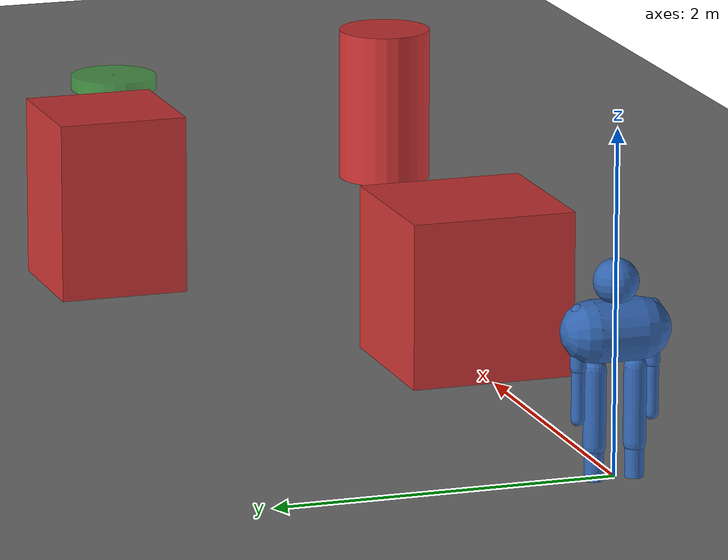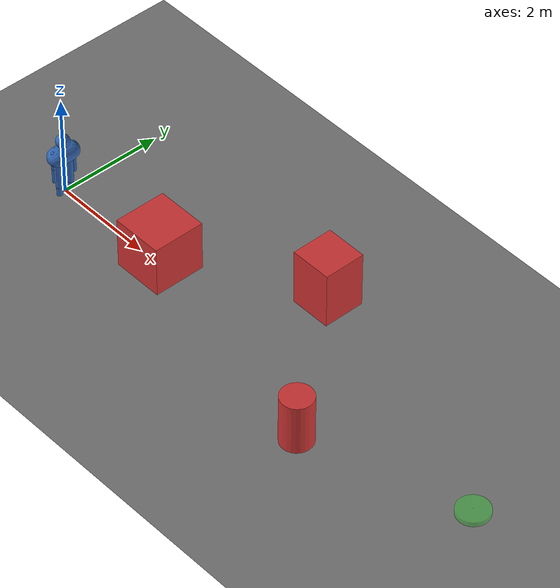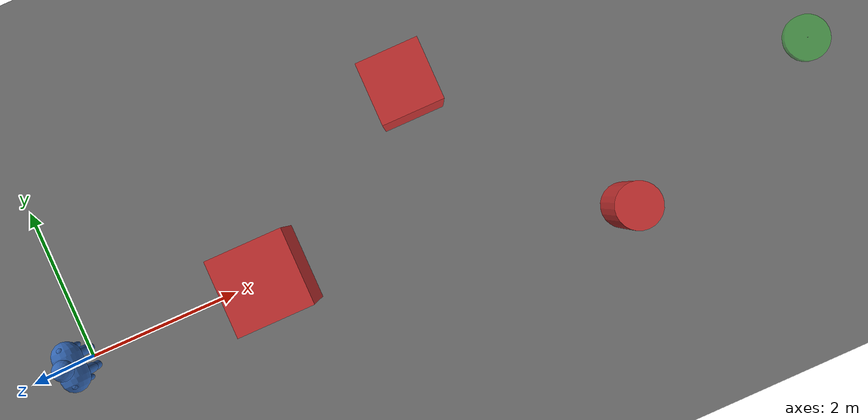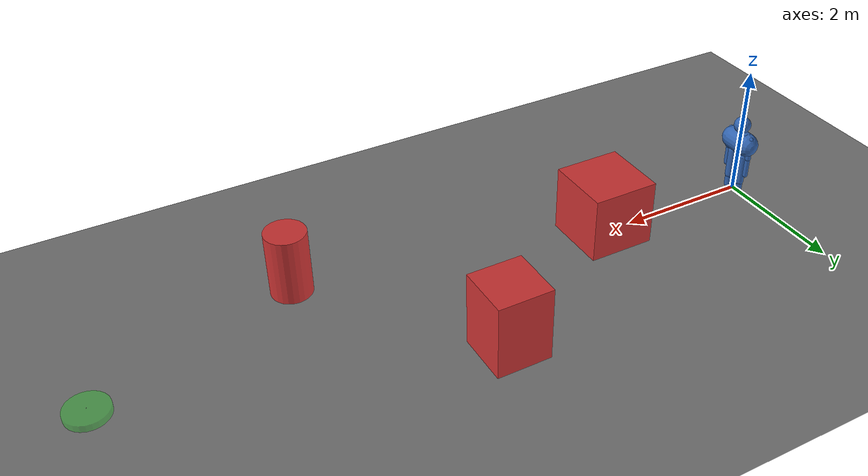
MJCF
<mujoco model="x2_obstacle_navigation">
  <compiler angle="radian" meshdir="." autolimits="true"/>

  <option timestep="0.001" gravity="0 0 -9.81" integrator="implicitfast">
    <flag/>
  </option>

  <default>
    <joint armature="0.01" damping="0.1"/>
    <geom condim="4" friction="1.0 0.005 0.0001"/>
    <motor ctrllimited="true"/>
  </default>

  <asset>
    <texture name="grid" type="2d" builtin="checker" rgb1="0.4 0.4 0.4" rgb2="0.5 0.5 0.5" width="512" height="512"/>
    <material name="grid_mat" texture="grid" texrepeat="10 10" reflectance="0.1"/>
    <material name="obstacle_mat" rgba="0.8 0.2 0.2 1"/>
    <material name="goal_mat" rgba="0.2 0.8 0.2 0.5"/>
    <material name="robot_mat" rgba="0.2 0.4 0.7 1"/>
  </asset>

  <worldbody>
    <!-- Ground -->
    <geom name="ground" type="plane" size="20 20 0.1" material="grid_mat"/>
    <light name="top_light" pos="0 0 10" dir="0 0 -1" diffuse="0.8 0.8 0.8"/>
    <light name="side_light" pos="5 5 5" dir="-1 -1 -1" diffuse="0.4 0.4 0.4"/>

    <!-- AGIBot X2 Robot (humanoid body) -->
    <body name="torso" pos="0 0 0.85">
      <inertial mass="45.0" pos="0 0 0" diaginertia="1.5 1.5 1.5"/>
      <geom name="torso_geom" type="capsule" size="0.18" fromto="0 -0.14 0 0 0.14 0" material="robot_mat"/>

      <!-- Head -->
      <body name="head" pos="0 0 0.28">
        <inertial mass="3.0" pos="0 0 0" diaginertia="0.15 0.15 0.15"/>
        <geom name="head_geom" type="sphere" size="0.13" material="robot_mat"/>
      </body>

      <!-- Left Arm -->
      <body name="left_upper_arm" pos="0 0.22 0.12">
        <inertial mass="2.5" pos="0 0 -0.15" diaginertia="0.06 0.06 0.06"/>
        <joint name="left_shoulder_pitch" type="hinge" axis="1 0 0" range="-3.14 3.14"/>
        <geom name="left_upper_arm_geom" type="capsule" size="0.045" fromto="0 0 0 0 0 -0.32" material="robot_mat"/>

        <body name="left_lower_arm" pos="0 0 -0.32">
          <inertial mass="1.8" pos="0 0 -0.15" diaginertia="0.04 0.04 0.04"/>
          <joint name="left_elbow" type="hinge" axis="0 1 0" range="-2.5 0"/>
          <geom name="left_lower_arm_geom" type="capsule" size="0.038" fromto="0 0 0 0 0 -0.3" material="robot_mat"/>
        </body>
      </body>

      <!-- Right Arm -->
      <body name="right_upper_arm" pos="0 -0.22 0.12">
        <inertial mass="2.5" pos="0 0 -0.15" diaginertia="0.06 0.06 0.06"/>
        <joint name="right_shoulder_pitch" type="hinge" axis="1 0 0" range="-3.14 3.14"/>
        <geom name="right_upper_arm_geom" type="capsule" size="0.045" fromto="0 0 0 0 0 -0.32" material="robot_mat"/>

        <body name="right_lower_arm" pos="0 0 -0.32">
          <inertial mass="1.8" pos="0 0 -0.15" diaginertia="0.04 0.04 0.04"/>
          <joint name="right_elbow" type="hinge" axis="0 1 0" range="-2.5 0"/>
          <geom name="right_lower_arm_geom" type="capsule" size="0.038" fromto="0 0 0 0 0 -0.3" material="robot_mat"/>
        </body>
      </body>

      <!-- Left Leg -->
      <body name="left_thigh" pos="0 0.12 -0.22">
        <inertial mass="6.0" pos="0 0 -0.22" diaginertia="0.12 0.12 0.12"/>
        <joint name="left_hip_pitch" type="hinge" axis="1 0 0" range="-1.5 1.5"/>
        <geom name="left_thigh_geom" type="capsule" size="0.065" fromto="0 0 0 0 0 -0.44" material="robot_mat"/>

        <body name="left_shin" pos="0 0 -0.44">
          <inertial mass="4.5" pos="0 0 -0.2" diaginertia="0.09 0.09 0.09"/>
          <joint name="left_knee" type="hinge" axis="0 1 0" range="-2.5 0"/>
          <geom name="left_shin_geom" type="capsule" size="0.055" fromto="0 0 0 0 0 -0.4" material="robot_mat"/>

          <body name="left_foot" pos="0 0 -0.4">
            <inertial mass="1.2" pos="0 0 -0.03" diaginertia="0.015 0.015 0.015"/>
            <joint name="left_ankle" type="hinge" axis="0 1 0" range="-0.5 0.5"/>
            <geom name="left_foot_geom" type="box" size="0.1 0.05 0.03" pos="0 0 -0.03" material="robot_mat"/>
            <site name="left_foot_site" pos="0 0 -0.06"/>
          </body>
        </body>
      </body>

      <!-- Right Leg -->
      <body name="right_thigh" pos="0 -0.12 -0.22">
        <inertial mass="6.0" pos="0 0 -0.22" diaginertia="0.12 0.12 0.12"/>
        <joint name="right_hip_pitch" type="hinge" axis="1 0 0" range="-1.5 1.5"/>
        <geom name="right_thigh_geom" type="capsule" size="0.065" fromto="0 0 0 0 0 -0.44" material="robot_mat"/>

        <body name="right_shin" pos="0 0 -0.44">
          <inertial mass="4.5" pos="0 0 -0.2" diaginertia="0.09 0.09 0.09"/>
          <joint name="right_knee" type="hinge" axis="0 1 0" range="-2.5 0"/>
          <geom name="right_shin_geom" type="capsule" size="0.055" fromto="0 0 0 0 0 -0.4" material="robot_mat"/>

          <body name="right_foot" pos="0 0 -0.4">
            <inertial mass="1.2" pos="0 0 -0.03" diaginertia="0.015 0.015 0.015"/>
            <joint name="right_ankle" type="hinge" axis="0 1 0" range="-0.5 0.5"/>
            <geom name="right_foot_geom" type="box" size="0.1 0.05 0.03" pos="0 0 -0.03" material="robot_mat"/>
            <site name="right_foot_site" pos="0 0 -0.06"/>
          </body>
        </body>
      </body>

      <!-- Free joint for base locomotion -->
      <freejoint name="root"/>
    </body>

    <!-- Obstacles -->
    <body name="obstacle_1" pos="2.5 0 0.5" mocap="true">
      <geom name="obs1_geom" type="box" size="0.5 0.5 0.5" material="obstacle_mat" contype="1" conaffinity="1"/>
    </body>

    <body name="obstacle_2" pos="5.0 1.5 0.5" mocap="true">
      <geom name="obs2_geom" type="box" size="0.4 0.4 0.6" material="obstacle_mat" contype="1" conaffinity="1"/>
    </body>

    <body name="obstacle_3" pos="7.0 -1.0 0.5" mocap="true">
      <geom name="obs3_geom" type="cylinder" size="0.3 0.5" material="obstacle_mat" contype="1" conaffinity="1"/>
    </body>

    <!-- Goal marker -->
    <body name="goal" pos="10.0 0 0.05">
      <geom name="goal_geom" type="cylinder" size="0.3 0.05" material="goal_mat" contype="0" conaffinity="0"/>
      <site name="goal_site" pos="0 0 0.05"/>
    </body>
  </worldbody>

  <!-- Sensors for metrics -->
  <sensor>
    <framepos name="torso_pos" objtype="body" objname="torso"/>
  </sensor>

  <!-- Actuators for locomotion -->
  <!-- AGIBot X2: vx [0, 1.0], wz [-0.3, 0.3] -->
  <actuator>
    <motor name="root_x" joint="root" gear="1 0 0 0 0 0" ctrlrange="-100 100"/>
    <motor name="root_y" joint="root" gear="0 1 0 0 0 0" ctrlrange="-100 100"/>
    <motor name="root_yaw" joint="root" gear="0 0 0 0 0 1" ctrlrange="-50 50"/>
    <position name="left_hip_act" joint="left_hip_pitch" kp="220" ctrlrange="-1.5 1.5"/>
    <position name="left_knee_act" joint="left_knee" kp="220" ctrlrange="-2.5 0"/>
    <position name="left_ankle_act" joint="left_ankle" kp="60" ctrlrange="-0.5 0.5"/>
    <position name="right_hip_act" joint="right_hip_pitch" kp="220" ctrlrange="-1.5 1.5"/>
    <position name="right_knee_act" joint="right_knee" kp="220" ctrlrange="-2.5 0"/>
    <position name="right_ankle_act" joint="right_ankle" kp="60" ctrlrange="-0.5 0.5"/>
    <position name="left_shoulder_act" joint="left_shoulder_pitch" kp="120" ctrlrange="-3.14 3.14"/>
    <position name="left_elbow_act" joint="left_elbow" kp="120" ctrlrange="-2.5 0"/>
    <position name="right_shoulder_act" joint="right_shoulder_pitch" kp="120" ctrlrange="-3.14 3.14"/>
    <position name="right_elbow_act" joint="right_elbow" kp="120" ctrlrange="-2.5 0"/>
  </actuator>
</mujoco>
